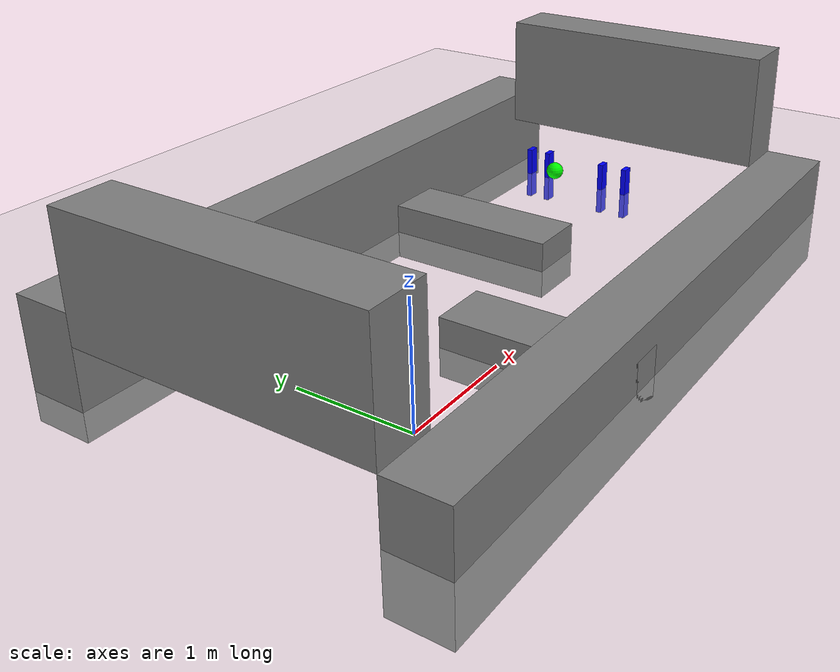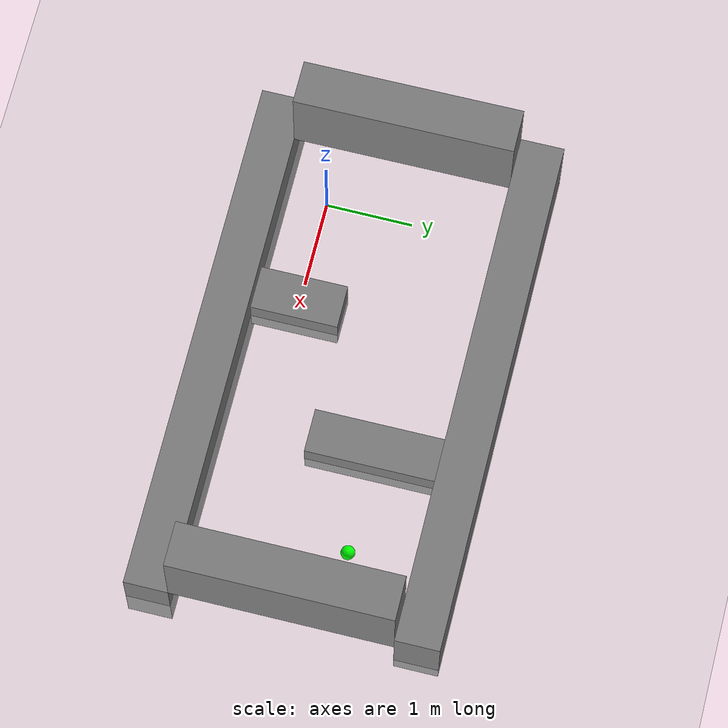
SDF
<?xml version="1.0" ?>
<sdf version="1.6">
  <world name="project_world">
    <!-- 添加地面平面 -->
    <include>
      <uri>model://ground_plane</uri>
    </include>

    <!-- 添加太阳光源 -->
    <include>
      <uri>model://sun</uri>
    </include>

    <!-- 设置 Gazebo 环境物理参数 -->
    <gravity>0 0 -9.81</gravity>

    <!-- 墙壁配置 -->
    <!-- 左侧墙壁 -->
    <model name="wall_right">
      <pose>2 -0.75 0 0 0 0</pose> <!-- 位置设在场地左侧 -->
      <link name="link">
        <collision name="collision">
          <geometry>
            <box>
              <size>6 0.5 1.0</size> <!-- 高度 0.5米，厚度 0.5米，长度 16米 -->
            </box>
          </geometry>
        </collision>
        <visual name="visual">
          <geometry>
            <box>
              <size>6 0.5 1.0</size>
            </box>
          </geometry>
          <material>
            <ambient>0.5 0.5 0.5 1</ambient> <!-- 灰色 -->
          </material>
        </visual>
      </link>
    </model>

    <!-- 右侧墙壁 -->
    <model name="wall_left">
      <pose>2 2.25 0.25 0 0 0</pose> <!-- 位置设在场地右侧 -->
      <link name="link">
        <collision name="collision">
          <geometry>
            <box>
              <size>6 0.5 1.0</size>
            </box>
          </geometry>
        </collision>
        <visual name="visual">
          <geometry>
            <box>
              <size>6 0.5 1.0</size>
            </box>
          </geometry>
          <material>
            <ambient>0.5 0.5 0.5 1</ambient>
          </material>
        </visual>
      </link>
    </model>

    <!-- 顶部墙壁 -->
    <model name="wall_top">
      <pose>4.75 0.75 1.0 0 0 0</pose> <!-- 位置设在场地顶部 -->
      <link name="link">
        <collision name="collision">
          <geometry>
            <box>
              <size>0.5 2.5 1.0</size> <!-- 宽度 16米，厚度 0.5米 -->
            </box>
          </geometry>
        </collision>
        <visual name="visual">
          <geometry>
            <box>
              <size>0.5 2.5 1.0</size>
            </box>
          </geometry>
          <material>
            <ambient>0.5 0.5 0.5 1</ambient>
          </material>
        </visual>
      </link>
    </model>

    <!-- 底部墙壁 -->
    <model name="wall_bottom">
      <pose>-0.75 0.75 1.0 0 0 0 0</pose> <!-- 位置设在场地底部 -->
      <link name="link">
        <collision name="collision">
          <geometry>
            <box>
              <size>0.5 2.5 1.0</size>
            </box>
          </geometry>
        </collision>
        <visual name="visual">
          <geometry>
            <box>
              <size>0.5 2.5 1.0</size>
            </box>
          </geometry>
          <material>
            <ambient>0.5 0.5 0.5 1</ambient>
          </material>
        </visual>
      </link>
    </model>

    <!-- 障碍物配置 -->
    <model name="obstacle_1">
      <pose>1.25 -0.25 0 0 0 0</pose>
      <link name="link">
        <collision name="collision">
          <geometry>
            <box>
              <size>0.5 1.5 0.5</size>
            </box>
          </geometry>
        </collision>
        <visual name="visual">
          <geometry>
            <box>
              <size>0.5 1.5 0.5</size>
            </box>
          </geometry>
          <material>
            <ambient>0.5 0.5 0.5 1</ambient>
          </material>
        </visual>
      </link>
    </model>

    <model name="obstacle_2">
      <pose>2.75 1.25 0 0 0 0</pose>
      <link name="link">
        <collision name="collision">
          <geometry>
            <box>
              <size>0.5 1.5 0.5</size>
            </box>
          </geometry>
        </collision>
        <visual name="visual">
          <geometry>
            <box>
              <size>0.5 1.5 0.5</size>
            </box>
          </geometry>
          <material>
            <ambient>0.5 0.5 0.5 1</ambient>
          </material>
        </visual>
      </link>
    </model>

<model name="ball">
  <pose>4.02 1.25 0.25 0 0 0</pose> <!-- 球体位置 -->
  <link name="link">
    <collision name="collision">
      <geometry>
        <sphere>
          <radius>0.08</radius> <!-- 球的半径 -->
        </sphere>
      </geometry>
    </collision>
    <visual name="visual">
      <geometry>
        <sphere>
          <radius>0.08</radius>
        </sphere>
      </geometry>
      <material>
        <ambient>0 1 0 1</ambient> <!-- 颜色为绿色 -->
      </material>
    </visual>

    <!-- 设置球体质量 -->
    <inertial>
      <mass>0.2</mass> <!-- 设置质量 -->
      <inertia> <!-- 设置惯性矩阵 -->
        <ixx>0.0005</ixx>
        <iyy>0.0005</iyy>
        <izz>0.0005</izz>
      </inertia>
    </inertial>
  </link>
</model>

    <!-- 窄球门 -->
    <!-- 左侧立柱 -->
    <model name="narrow_gate_left">
      <pose>4.44 1.55 0 0 0 0</pose>
      <link name="link">
        <collision name="collision">
          <geometry>
            <box>
              <size>0.1 0.05 0.5</size> <!-- 立柱大小，半径0.1米，高度1.0米 -->
            </box>
          </geometry>
        </collision>
        <visual name="visual">
          <geometry>
            <box>
              <size>0.1 0.05 0.5</size>
            </box>
          </geometry>
          <material>
            <ambient>0 0 1 1</ambient>
          </material>
        </visual>
      </link>
    </model>
    <!-- 右侧立柱 -->
    <model name="narrow_gate_right">
      <pose>4.44 0.95 0 0 0 0</pose> <!-- 与左侧立柱距离为0.5米（门宽度） -->
      <link name="link">
        <collision name="collision">
          <geometry>
            <box>
              <size>0.1 0.05 0.5</size>
            </box>
          </geometry>
        </collision>
        <visual name="visual">
          <geometry>
            <box>
              <size>0.1 0.05 0.5</size>
            </box>
          </geometry>
          <material>
            <ambient>0 0 1 1</ambient>
          </material>
        </visual>
      </link>
    </model>

    <!-- 宽球门 -->
    <!-- 左侧立柱 -->
    <model name="wide_gate_left">
      <pose>4.44 1.75 0 0 0 0</pose>
      <link name="link">
        <collision name="collision">
          <geometry>
            <box>
              <size>0.1 0.05 0.5</size>
            </box>
          </geometry>
        </collision>
        <visual name="visual">
          <geometry>
            <box>
              <size>0.1 0.05 0.5</size>
            </box>
          </geometry>
          <material>
            <ambient>0 0 1 1</ambient>
          </material>
        </visual>
      </link>
    </model>
    <!-- 右侧立柱 -->
    <model name="wide_gate_right">
      <pose>4.44 0.7 0 0 0 0</pose> <!-- 与左侧立柱距离为1米（门宽度） -->
      <link name="link">
        <collision name="collision">
          <geometry>
            <box>
              <size>0.1 0.05 0.5</size>
            </box>
          </geometry>
        </collision>
        <visual name="visual">
          <geometry>
            <box>
              <size>0.1 0.05 0.5</size>
            </box>
          </geometry>
          <material>
            <ambient>0 0 1 1</ambient>
          </material>
        </visual>
      </link>
    </model>

  </world>
</sdf>
